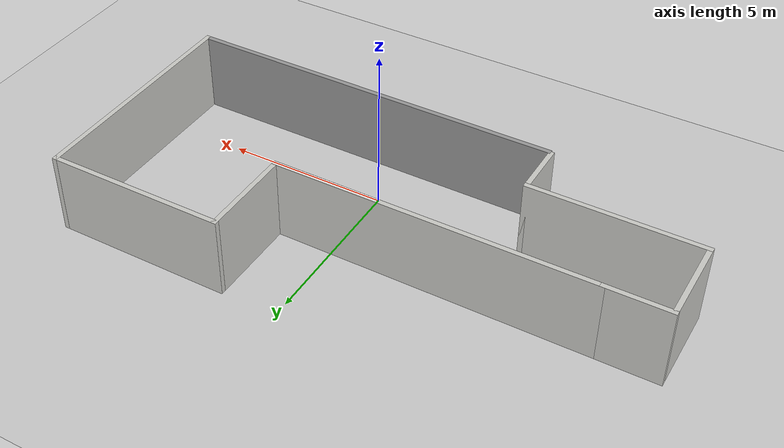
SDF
<sdf version="1.6">
 <world name="default">
  <light name="sun" type="directional">
   <pose>0 0 10 0 -0 0</pose>
   <diffuse>0.8 0.8 0.8 1</diffuse>
   <specular>0.2 0.2 0.2 1</specular>
   <attenuation>
    <range>1000</range>
    <constant>0.9</constant>
    <linear>0.01</linear>
    <quadratic>0.001</quadratic>
   </attenuation>
   <direction>-0.5 0.1 -0.9</direction>
  </light>
  <model name="ground_plane">
   <static>1</static>
   <link name="link">
    <collision name="collision">
     <geometry><plane><normal>0 0 1</normal><size>100 100</size></plane></geometry>
     <surface>
      <contact><collide_bitmask>65535</collide_bitmask></contact>
      <friction><ode><mu>100</mu><mu2>50</mu2></ode></friction>
     </surface>
    </collision>
    <visual name="visual">
     <cast_shadows>0</cast_shadows>
     <geometry><plane><normal>0 0 1</normal><size>100 100</size></plane></geometry>
     <material>
      <script><uri>file://media/materials/scripts/gazebo.material</uri><name>Gazebo/Grey</name></script>
     </material>
    </visual>
   </link>
  </model>
  <gravity>0 0 -9.8</gravity>
  <magnetic_field>6e-06 2.3e-05 -4.2e-05</magnetic_field>
  <atmosphere type="adiabatic"/>
  <physics name="default_physics" default="0" type="ode">
   <max_step_size>0.001</max_step_size>
   <real_time_factor>1</real_time_factor>
   <real_time_update_rate>1000</real_time_update_rate>
  </physics>
  <scene><ambient>0.4 0.4 0.4 1</ambient><background>0.7 0.7 0.7 1</background><shadows>1</shadows></scene>
  <audio><device>default</device></audio>
  <spherical_coordinates>
   <surface_model>EARTH_WGS84</surface_model>
   <latitude_deg>0</latitude_deg>
   <longitude_deg>0</longitude_deg>
   <elevation>0</elevation>
   <heading_deg>0</heading_deg>
  </spherical_coordinates>
  <model name="empty_with_tiles">
   <pose>-1.28 1.91 0 0 -0 0</pose>
   <link name="Wall_0">
    <collision name="Wall_0_Collision">
     <geometry><box><size>11.75 0.15 2.5</size></box></geometry>
     <pose>0 0 1.25 0 -0 0</pose>
    </collision>
    <visual name="Wall_0_Visual">
     <pose>0 0 1.25 0 -0 0</pose>
     <geometry><box><size>11.75 0.15 2.5</size></box></geometry>
     <material>
      <script><uri>file://media/materials/scripts/gazebo.material</uri><name>Gazebo/Grey</name></script>
      <ambient>1 1 1 1</ambient>
     </material>
     <meta><layer>0</layer></meta>
    </visual>
    <pose>2.6 -3.55 0 0 -0 0</pose>
   </link>
   <link name="Wall_10">
    <collision name="Wall_10_Collision">
     <geometry><box><size>2.75 0.15 2.5</size></box></geometry>
     <pose>0 0 1.25 0 -0 0</pose>
    </collision>
    <visual name="Wall_10_Visual">
     <pose>0 0 1.25 0 -0 0</pose>
     <geometry><box><size>2.75 0.15 2.5</size></box></geometry>
     <material>
      <script><uri>file://media/materials/scripts/gazebo.material</uri><name>Gazebo/CeilingTiled</name></script>
      <ambient>1 1 1 1</ambient>
     </material>
     <meta><layer>0</layer></meta>
    </visual>
    <pose>-8.4 -0.6 0 0 -0 -1.5708</pose>
   </link>
   <link name="Wall_11">
    <collision name="Wall_11_Collision">
     <geometry><box><size>5.25 0.15 2.5</size></box></geometry>
     <pose>0 0 1.25 0 -0 0</pose>
    </collision>
    <visual name="Wall_11_Visual">
     <pose>0 0 1.25 0 -0 0</pose>
     <geometry><box><size>5.25 0.15 2.5</size></box></geometry>
     <material>
      <script><uri>file://media/materials/scripts/gazebo.material</uri><name>Gazebo/CeilingTiled</name></script>
      <ambient>1 1 1 1</ambient>
     </material>
     <meta><layer>0</layer></meta>
    </visual>
    <pose>-5.85 -1.9 0 0 -0 0</pose>
   </link>
   <link name="Wall_12">
    <collision name="Wall_12_Collision">
     <geometry><box><size>1.75 0.15 2.5</size></box></geometry>
     <pose>0 0 1.25 0 -0 0</pose>
    </collision>
    <visual name="Wall_12_Visual">
     <pose>0 0 1.25 0 -0 0</pose>
     <geometry><box><size>1.75 0.15 2.5</size></box></geometry>
     <material>
      <script><uri>file://media/materials/scripts/gazebo.material</uri><name>Gazebo/CeilingTiled</name></script>
      <ambient>1 1 1 1</ambient>
     </material>
     <meta><layer>0</layer></meta>
    </visual>
    <pose>-3.3 -2.7 0 0 -0 -1.5708</pose>
   </link>
   <link name="Wall_5">
    <collision name="Wall_5_Collision">
     <geometry><box><size>7.25 0.15 2.5</size></box></geometry>
     <pose>0 0 1.25 0 -0 0</pose>
    </collision>
    <visual name="Wall_5_Visual">
     <pose>0 0 1.25 0 -0 0</pose>
     <geometry><box><size>7.25 0.15 2.5</size></box></geometry>
     <material>
      <script><uri>file://media/materials/scripts/gazebo.material</uri><name>Gazebo/CeilingTiled</name></script>
      <ambient>1 1 1 1</ambient>
     </material>
     <meta><layer>0</layer></meta>
    </visual>
    <pose>8.4 0 0 0 -0 1.5708</pose>
   </link>
   <link name="Wall_6">
    <collision name="Wall_6_Collision">
     <geometry><box><size>5.5 0.15 2.5</size></box></geometry>
     <pose>0 0 1.25 0 -0 0</pose>
    </collision>
    <visual name="Wall_6_Visual">
     <pose>0 0 1.25 0 -0 0</pose>
     <geometry><box><size>5.5 0.15 2.5</size></box></geometry>
     <material>
      <script><uri>file://media/materials/scripts/gazebo.material</uri><name>Gazebo/CeilingTiled</name></script>
      <ambient>1 1 1 1</ambient>
     </material>
     <meta><layer>0</layer></meta>
    </visual>
    <pose>5.725 3.55 0 0 -0 3.14159</pose>
   </link>
   <link name="Wall_7">
    <collision name="Wall_7_Collision">
     <geometry><box><size>3 0.15 2.5</size></box></geometry>
     <pose>0 0 1.25 0 -0 0</pose>
    </collision>
    <visual name="Wall_7_Visual">
     <pose>0 0 1.25 0 -0 0</pose>
     <geometry><box><size>3 0.15 2.5</size></box></geometry>
     <material>
      <script><uri>file://media/materials/scripts/gazebo.material</uri><name>Gazebo/CeilingTiled</name></script>
      <ambient>1 1 1 1</ambient>
     </material>
     <meta><layer>0</layer></meta>
    </visual>
    <pose>3.05 2.125 0 0 -0 -1.5708</pose>
   </link>
   <link name="Wall_8">
    <collision name="Wall_8_Collision">
     <geometry><box><size>9.75 0.15 2.5</size></box></geometry>
     <pose>0 0 1.25 0 -0 0</pose>
    </collision>
    <visual name="Wall_8_Visual">
     <pose>0 0 1.25 0 -0 0</pose>
     <geometry><box><size>9.75 0.15 2.5</size></box></geometry>
     <material>
      <script><uri>file://media/materials/scripts/gazebo.material</uri><name>Gazebo/CeilingTiled</name></script>
      <ambient>1 1 1 1</ambient>
     </material>
     <meta><layer>0</layer></meta>
    </visual>
    <pose>-1.75 0.7 0 0 -0 3.14159</pose>
   </link>
   <link name="Wall_9">
    <collision name="Wall_9_Collision">
     <geometry><box><size>2 0.15 2.5</size></box></geometry>
     <pose>0 0 1.25 0 -0 0</pose>
    </collision>
    <visual name="Wall_9_Visual">
     <pose>0 0 1.25 0 -0 0</pose>
     <geometry><box><size>2 0.15 2.5</size></box></geometry>
     <material>
      <script><uri>file://media/materials/scripts/gazebo.material</uri><name>Gazebo/CeilingTiled</name></script>
      <ambient>1 1 1 1</ambient>
     </material>
     <meta><layer>0</layer></meta>
    </visual>
    <pose>-7.475 0.7 0 0 -0 3.14159</pose>
   </link>
   <static>1</static>
  </model>
 </world>
</sdf>
